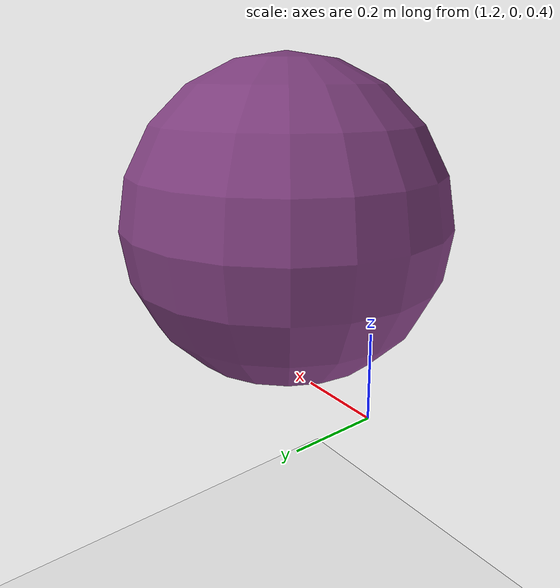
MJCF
<mujoco model="scene10_texture">
  <compiler angle="radian"/>

  <option timestep="0.002" gravity="0 0 -9.81">
    <flag contact="disable"/>
  </option>

  <visual>
    <global offwidth="800" offheight="800"/>
    <quality shadowsize="4096"/>
  </visual>

  <asset>
    <texture name="white_skybox"
             type="skybox"
             builtin="flat"
             width="512"
             height="512"
             rgb1="1 1 1"
             rgb2="1 1 1"/>
    <material name="white_floor" rgba="1 1 1 1" reflectance="0"/>

    <!-- High-frequency checkerboard texture for sphere -->
    <texture name="checker_hf" type="2d" builtin="checker" width="1024" height="1024"
             rgb1="0.1 0.1 0.1" rgb2="0.9 0.4 0.9"/>
    <material name="checker_mat" texture="checker_hf" texrepeat="8 8" texuniform="false" reflectance="0.1"/>
  </asset>

  <worldbody>
    <light directional="true" pos="0 0 3" dir="0 0 -1" diffuse="0.8 0.8 0.8"/>
    <light directional="true" pos="2 2 3" dir="-0.5 -0.5 -1" diffuse="0.4 0.4 0.4"/>

    <geom name="floor" type="plane" size="5 5 0.1" material="white_floor" pos="0 0 -0.5"/>

    <body name="target" pos="0 0 0.8">
      <site name="target_site" size="0.01" rgba="1 0 0 0"/>
    </body>

    <!-- Textured sphere that orbits and spins -->
    <body name="textured_sphere" pos="1.5 0 0.8">
      <freejoint/>
      <geom name="sphere_geom" type="sphere" size="0.4" material="checker_mat" mass="1"/>
    </body>

    <!-- Scaled 1.7x for 800x800 square resolution — sphere orbits at 1.5m radius -->
    <camera name="cam0" pos="4.25 0 2.55" mode="targetbody" target="target" fovy="50"/>
    <camera name="cam1" pos="0 4.25 2.55" mode="targetbody" target="target" fovy="50"/>
    <camera name="cam2" pos="-4.25 0 2.55" mode="targetbody" target="target" fovy="50"/>
    <camera name="cam3" pos="0 -4.25 2.55" mode="targetbody" target="target" fovy="50"/>
    <camera name="cam4" pos="3.4 3.4 4.25" mode="targetbody" target="target" fovy="50"/>
    <camera name="cam5" pos="-3.4 3.4 4.25" mode="targetbody" target="target" fovy="50"/>
    <camera name="cam6" pos="3.4 -3.4 4.25" mode="targetbody" target="target" fovy="50"/>
    <camera name="cam7" pos="-3.4 -3.4 4.25" mode="targetbody" target="target" fovy="50"/>
    <camera name="cam8" pos="3.06 0 1.02" mode="targetbody" target="target" fovy="55"/>
    <camera name="cam9" pos="-3.06 0 1.02" mode="targetbody" target="target" fovy="55"/>
    <camera name="cam10" pos="0 0 5.1" mode="targetbody" target="target" fovy="45"/>
    <camera name="cam11" pos="1.7 1.7 4.25" mode="targetbody" target="target" fovy="45"/>
  </worldbody>
</mujoco>
